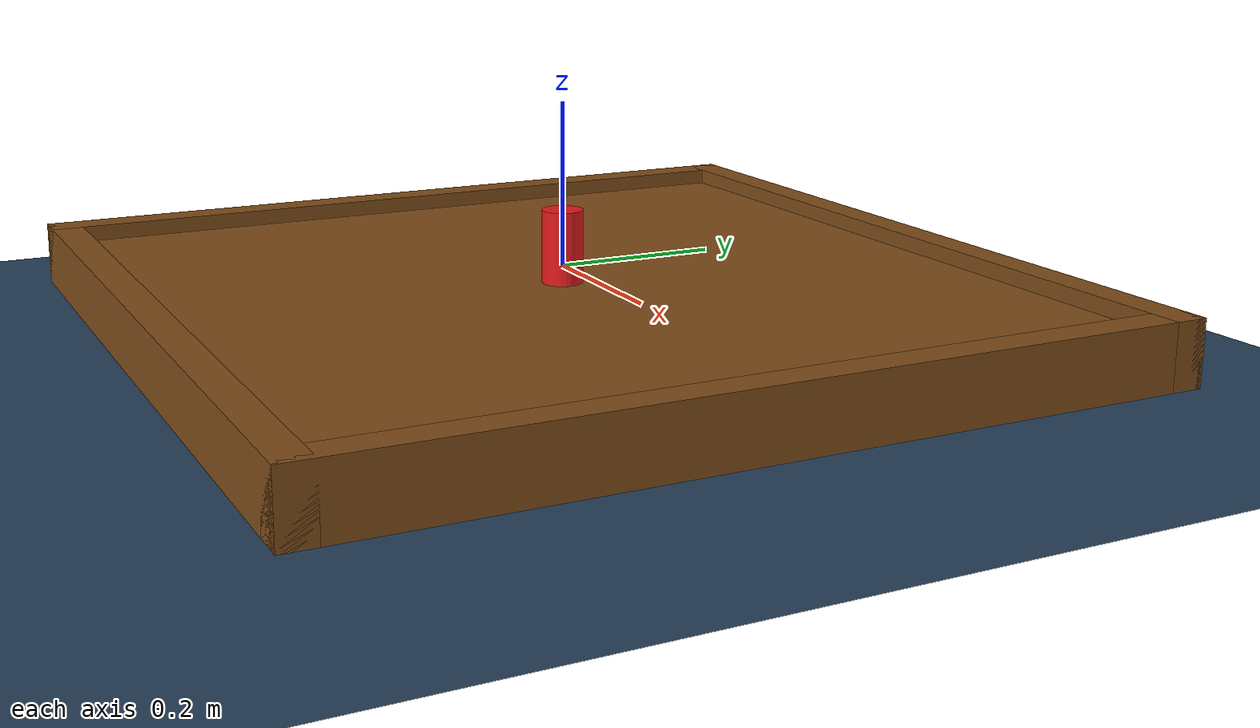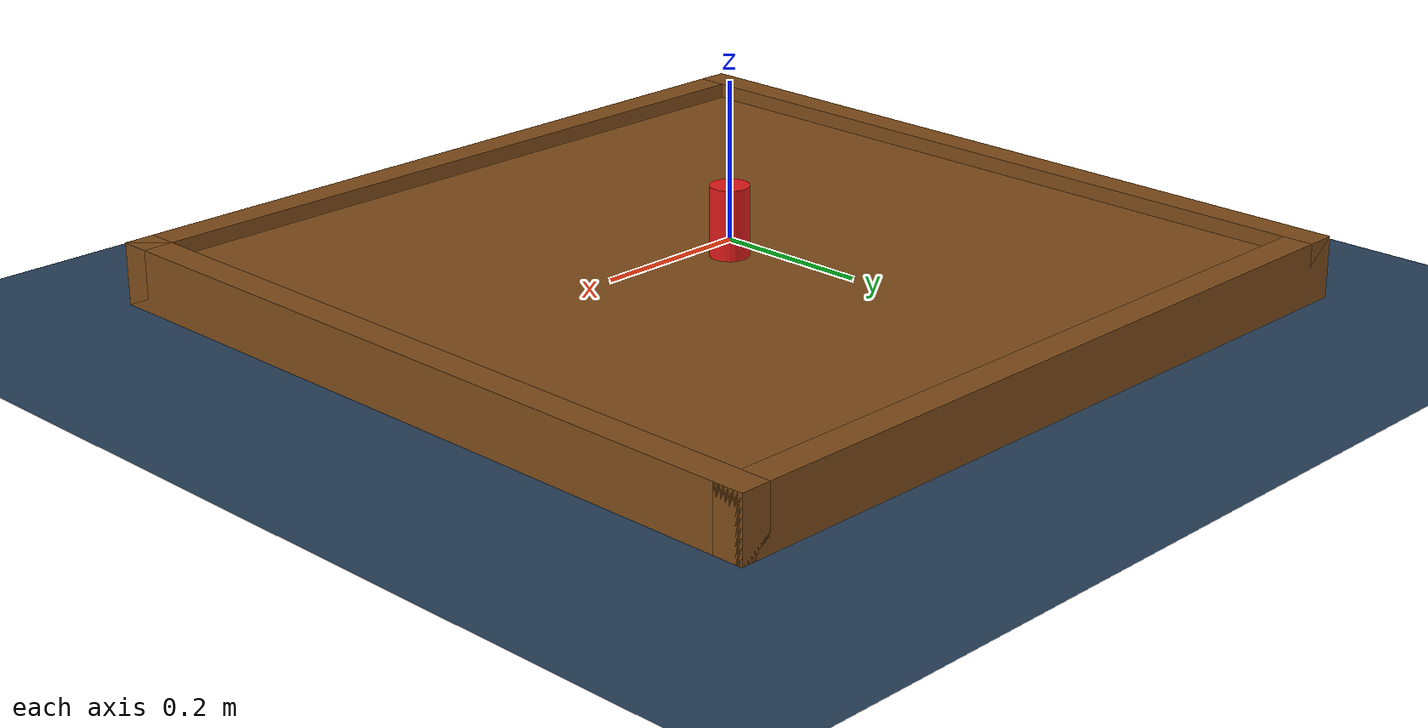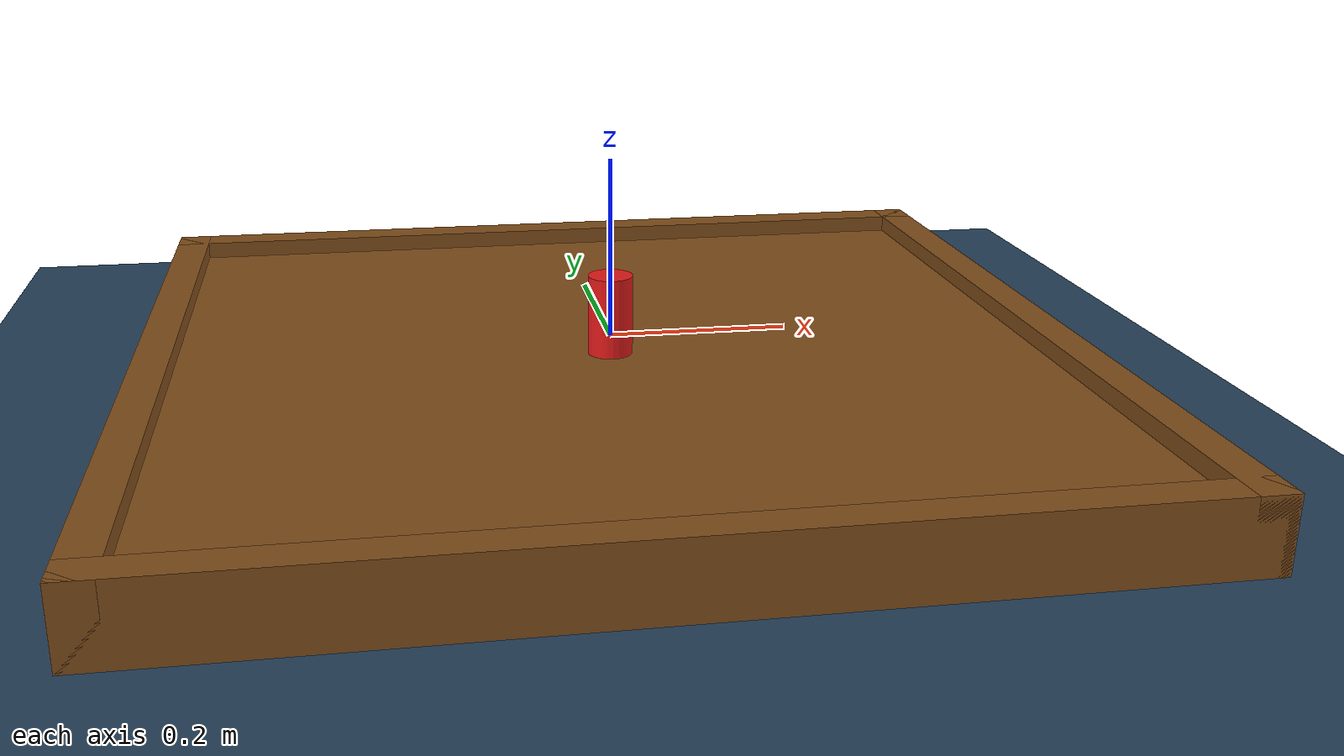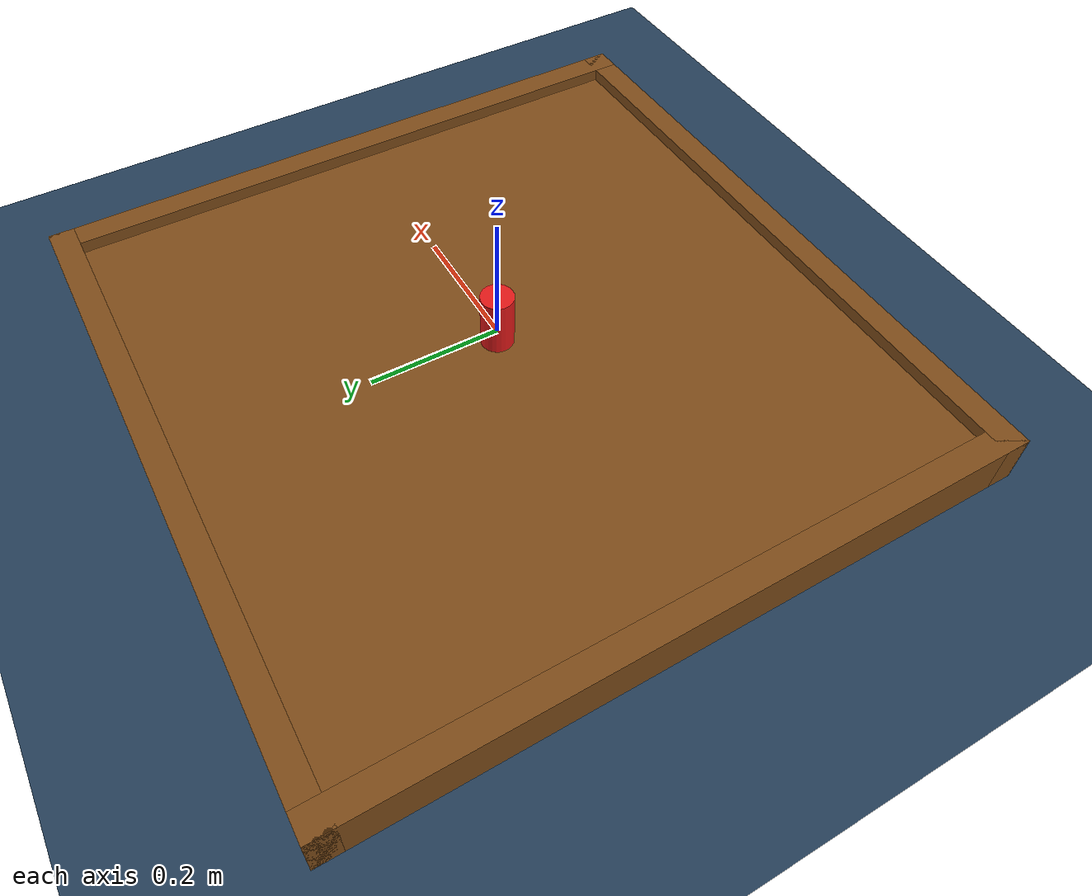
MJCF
<mujoco model="scene">

  <include file="table.xml"/>
  <include file="object.xml"/>

  <statistic center="0 0 0" extent="0.3"/>

  <visual>
    <rgba haze="0.15 0.25 0.35 1"/>
    <quality shadowsize="8192"/>
  </visual>

  <asset>
    <texture type="skybox" builtin="gradient" rgb1="0.3 0.5 0.7" rgb2="0 0 0" width="512" height="3072"/>
    <texture type="2d" name="groundplane" builtin="checker" mark="edge" rgb1="0.2 0.3 0.4" rgb2="0.1 0.2 0.3"
      markrgb="0.8 0.8 0.8" width="300" height="300"/>
    <material name="groundplane" texture="groundplane" texuniform="true" texrepeat="5 5" reflectance="0.2"/>
  </asset>

  <option cone="elliptic"/>

  <worldbody>
    <light pos="0 0 1"/>
    <light pos="0.3 0 1.5" dir="0 0 -1" directional="true"/>
    <geom name="floor" pos="0 0 -0.1" size="0 0 0.05" type="plane" material="groundplane"/>
  </worldbody>

</mujoco>

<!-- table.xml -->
<mujoco>
  <worldbody>
    <body name="table" pos="0 0 -0.04">
        <geom type="box" name="table_top" pos="0 0 0" size="0.5 0.5 0.02" rgba="0.5 0.3 0.1 1"/>
        <geom type="box" name="table_border1" pos="0.5 0 0" size="0.02 0.52 0.04" rgba="0.5 0.3 0.1 1"/>
        <geom type="box" name="table_border2" pos="-0.5 0 0" size="0.02 0.52 0.04" rgba="0.5 0.3 0.1 1"/>
        <geom type="box" name="table_border3" pos="0 0.5 0" size="0.52 0.02 0.04" rgba="0.5 0.3 0.1 1"/>
        <geom type="box" name="table_border4" pos="0 -0.5 0" size="0.52 0.02 0.04" rgba="0.5 0.3 0.1 1"/>
    </body>
  </worldbody>
</mujoco>

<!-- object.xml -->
<mujoco>
  <worldbody>
    <!-- Positioning the cylinder over the hand -->
    <body name="object" pos="0 0 0.025" quat="0 0 0 0">
         <freejoint/>
         <geom type="cylinder" size="0.025 0.045" rgba="0.9 0.1 0.1 1" density="25" friction="0.5 0.1 0.1"/>
    </body>
  </worldbody>
</mujoco>
